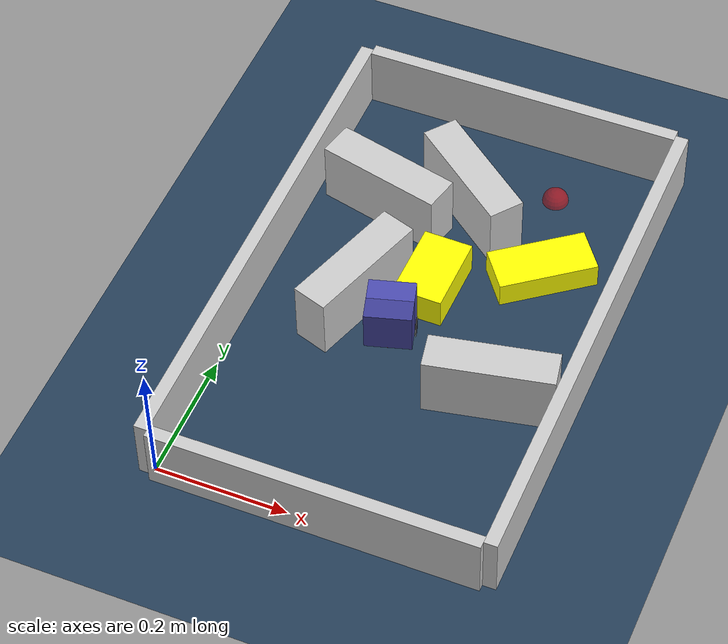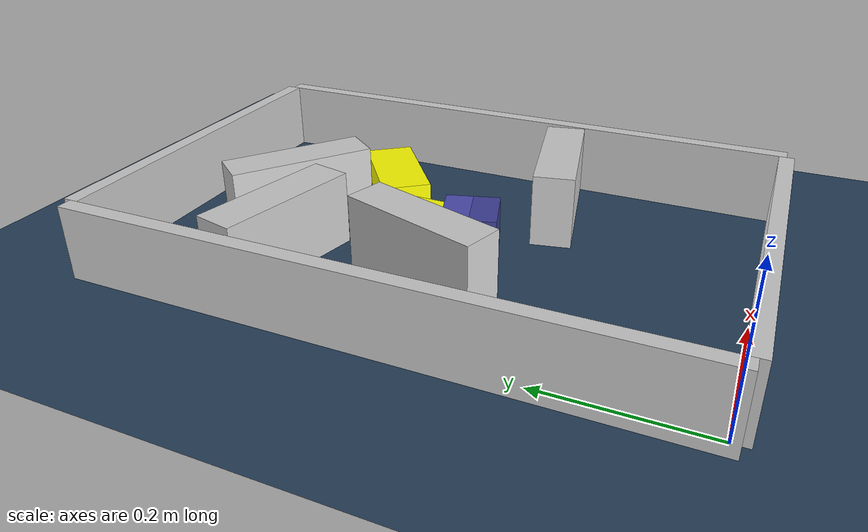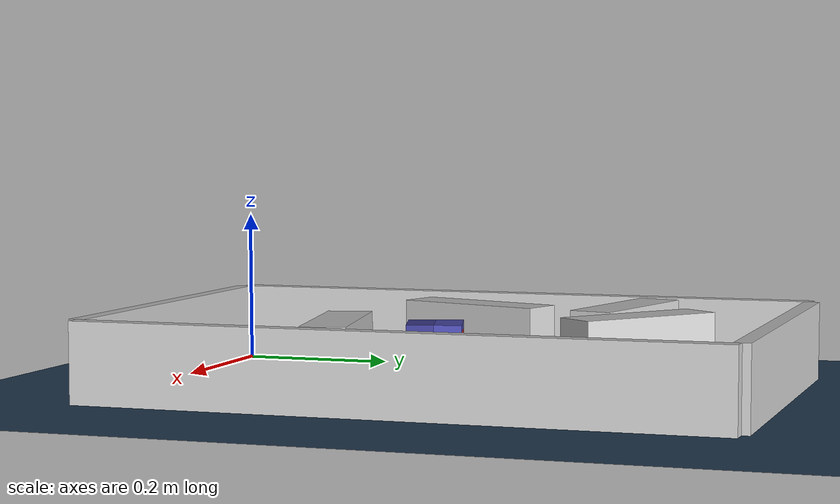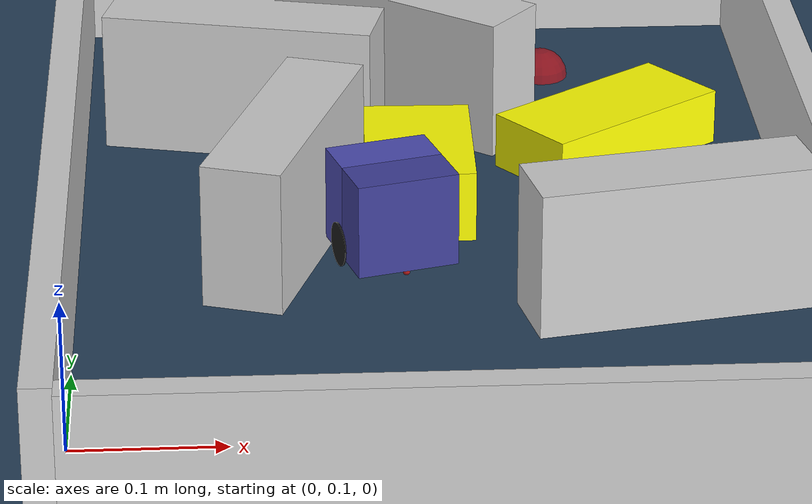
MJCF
<?xml version='1.0' encoding='utf-8'?>
<mujoco model="real_buildable">
  <compiler angle="degree" />
  <option timestep="0.002" integrator="implicitfast" iterations="100" cone="elliptic" />
  <default>
    <geom density="1" />
  </default>
  <asset>
    <texture builtin="gradient" height="3072" rgb1="0.3 0.5 0.7" rgb2="0 0 0" type="skybox" width="512" />
    <texture builtin="checker" height="300" mark="edge" markrgb="0.8 0.8 0.8" name="groundplane" rgb1="0.2 0.3 0.4" rgb2="0.1 0.2 0.3" type="2d" width="300" />
    <material name="groundplane" reflectance="0.2" texrepeat="5 5" texture="groundplane" texuniform="true" />
  </asset>
  <worldbody>
    <light dir="0 0 -1" directional="true" pos="0 0 1.5" />
    <geom name="floor" type="plane" condim="4" friction="0.5 0.005 0.001" material="groundplane" size="0 0 0.05" />
    <body name="walls">
      <geom name="wall_boundary_left" type="box" condim="4" friction="1.0 0.005 0.0001" rgba="0.8 0.8 0.8 1" pos="-0.010000 0.387500 0.050000" euler="0 0 0.000000" size="0.010000 0.397500 0.050000" />
      <geom name="wall_boundary_right" type="box" condim="4" friction="1.0 0.005 0.0001" rgba="0.8 0.8 0.8 1" pos="0.500000 0.387500 0.050000" euler="0 0 0.000000" size="0.010000 0.397500 0.050000" />
      <geom name="wall_boundary_bottom" type="box" condim="4" friction="1.0 0.005 0.0001" rgba="0.8 0.8 0.8 1" pos="0.245000 -0.010000 0.050000" euler="0 0 0.000000" size="0.245000 0.010000 0.050000" />
      <geom name="wall_boundary_top" type="box" condim="4" friction="1.0 0.005 0.0001" rgba="0.8 0.8 0.8 1" pos="0.245000 0.785000 0.050000" euler="0 0 0.000000" size="0.245000 0.010000 0.050000" />
      <geom name="wall_inner_1" type="box" condim="4" friction="1.0 0.005 0.0001" rgba="0.8 0.8 0.8 1" pos="0.389000 0.281000 0.050000" euler="0 0 11.200000" size="0.095000 0.027500 0.050000" />
      <geom name="wall_inner_2" type="box" condim="4" friction="1.0 0.005 0.0001" rgba="0.8 0.8 0.8 1" pos="0.140000 0.380000 0.050000" euler="0 0 71.700000" size="0.097500 0.027500 0.050000" />
      <geom name="wall_inner_3" type="box" condim="4" friction="1.0 0.005 0.0001" rgba="0.8 0.8 0.8 1" pos="0.115000 0.567000 0.050000" euler="0 0 166.600000" size="0.097500 0.027500 0.050000" />
      <geom name="wall_inner_4" type="box" condim="4" friction="1.0 0.005 0.0001" rgba="0.8 0.8 0.8 1" pos="0.232000 0.611000 0.050000" euler="0 0 142.000000" size="0.097500 0.027500 0.050000" />
    </body>
    <body name="car" pos="0.21045587894873935 0.34366379880628717 0.01" quat="0.60095526112191044 0 0 0.79928266222275601">
      <freejoint name="car_freejoint" />
      <inertial pos="0 0 0.0375" mass="0.35" diaginertia="0.000266 0.000266 0.000286" />
      <geom name="front_chassis_collision" type="box" pos="0.0175 0 0.0375" size="0.0175 0.035 0.0325" rgba="0.3 0.3 0.7 1" />
      <geom name="rear_chassis_collision" type="box" pos="-0.0175 0 0.0375" size="0.0175 0.035 0.0325" rgba="0.25 0.25 0.6 1" />
      <geom name="front_marker" type="box" pos="0.034 0 0.0505" size="0.002 0.015 0.01" rgba="1 0.2 0.2 1" contype="0" conaffinity="0" />
      <body name="rear_support_body" pos="-0.03 0 0.0025">
        <joint name="rear_caster_joint" type="ball" damping="0.0001" />
        <inertial pos="0 0 0" mass="0.025" diaginertia="0.000001 0.000001 0.000001" />
        <geom name="rear_support" type="sphere" pos="0 0 0" size="0.0025" friction="0 0 0" rgba="0.7 0.1 0.1 1" />
      </body>
      <body name="front_support_body" pos="0.03 0 0.0025">
        <joint name="front_caster_joint" type="ball" damping="0.0001" />
        <inertial pos="0 0 0" mass="0.025" diaginertia="0.000001 0.000001 0.000001" />
        <geom name="front_support" type="sphere" pos="0 0 0" size="0.0025" friction="0 0 0" rgba="0.1 0.7 0.1 1" />
      </body>
      <body name="left_wheel" pos="0 0.0375 0.015">
        <inertial pos="0 0 0" mass="0.05" diaginertia="0.000003 0.000006 0.000003" />
        <joint name="left_wheel_joint" type="hinge" axis="0 1 0" damping="0.01" armature="0.0001" />
        <geom name="left_wheel_collision" type="cylinder" size="0.015 0.0005" euler="90 0 0" rgba="0.1 0.1 0.1 1" />
      </body>
      <body name="right_wheel" pos="0 -0.0375 0.015">
        <inertial pos="0 0 0" mass="0.05" diaginertia="0.000003 0.000006 0.000003" />
        <joint name="right_wheel_joint" type="hinge" axis="0 1 0" damping="0.01" armature="0.0001" />
        <geom name="right_wheel_collision" type="cylinder" size="0.015 0.0005" euler="90 0 0" rgba="0.1 0.1 0.1 1" />
      </body>
    </body>
    <body name="obstacle_0_movable">
      <geom name="obstacle_0_movable" condim="4" pos="0.23404288813822433 0.44802407755962176 0.025000000000000001" friction="1 0.005 0.0001" rgba="1 1 0 1" size="0.037500 0.060000 0.025000" type="box" mass="0.1" quat="0.99995718937758338 0 0 -0.0092530758174658116" />
      <joint type="free" />
    </body>
    <body name="obstacle_1_movable">
      <geom name="obstacle_1_movable" condim="4" pos="0.374 0.53000000000000003 0.02" friction="1 0.005 0.0001" rgba="1 1 0 1" size="0.035000 0.075000 0.020000" type="box" mass="0.1" quat="0.8957117602394129 0 0 -0.44463517918492751" />
      <joint type="free" />
    </body>
    <site name="goal" type="sphere" pos="0.340000 0.682000 0.0" size="0.02" rgba="1 0 0 0.5" />
  </worldbody>
  <actuator>
    <velocity name="left_wheel_drive" joint="left_wheel_joint" ctrlrange="-25 25" kv="0.75" forcerange="-0.5 0.5" />
    <velocity name="right_wheel_drive" joint="right_wheel_joint" ctrlrange="-25 25" kv="0.75" forcerange="-0.5 0.5" />
  </actuator>
</mujoco>
